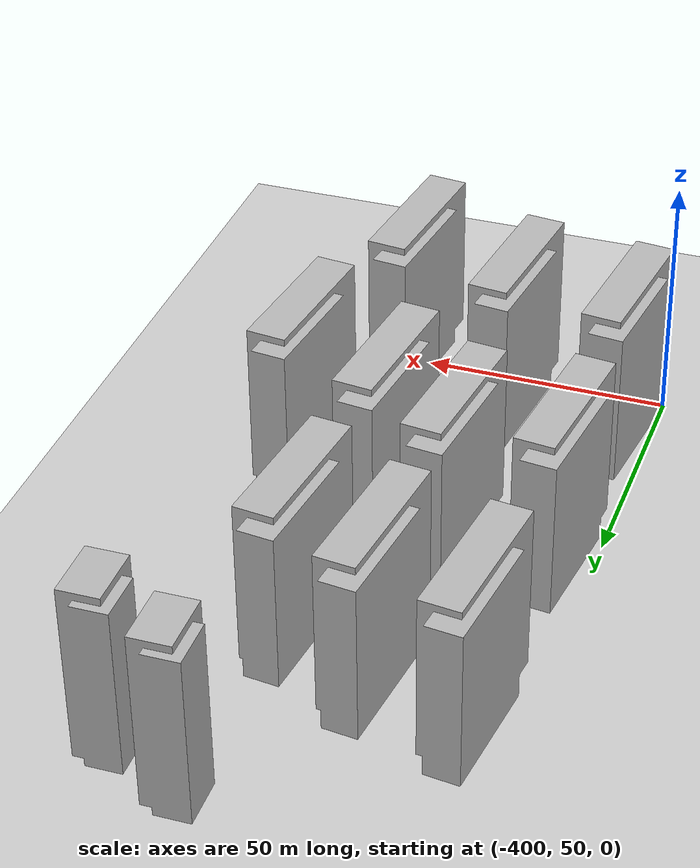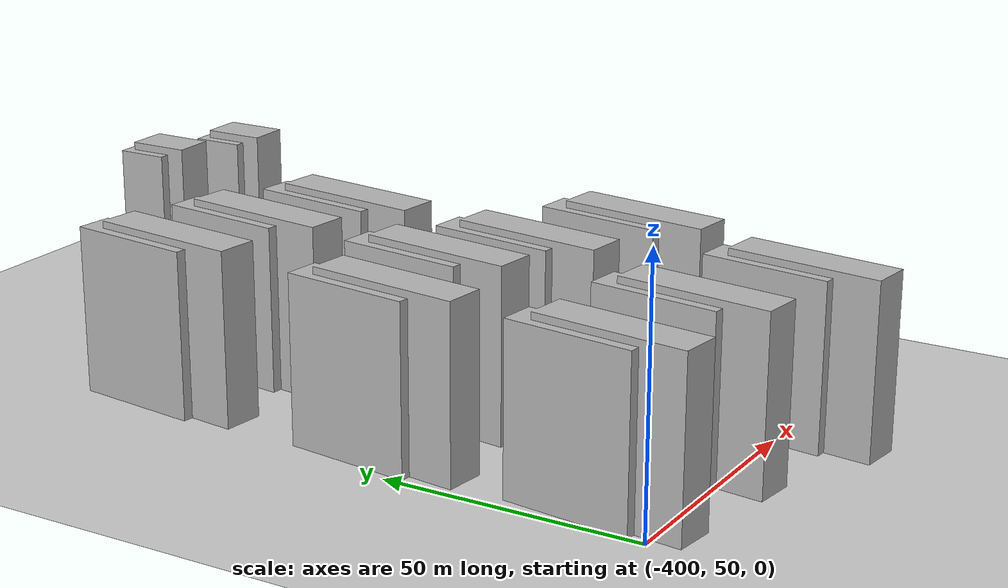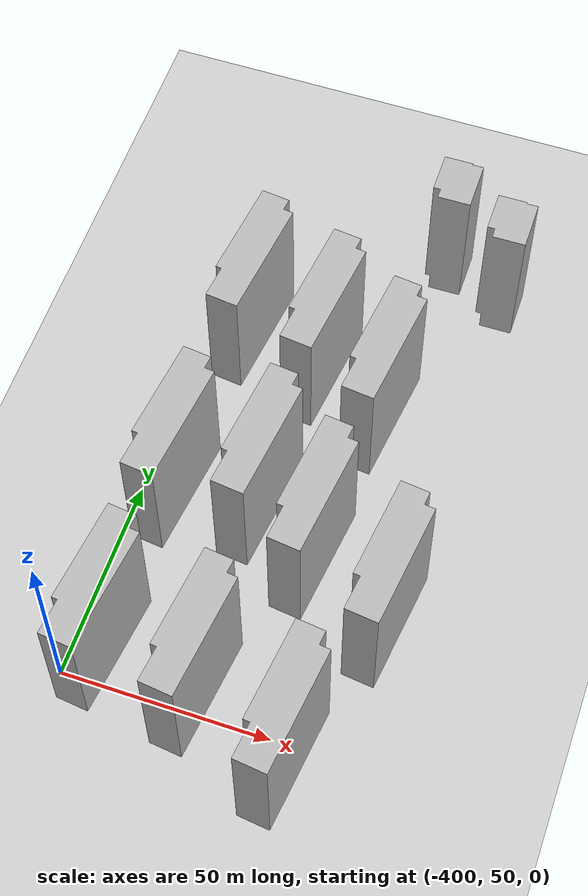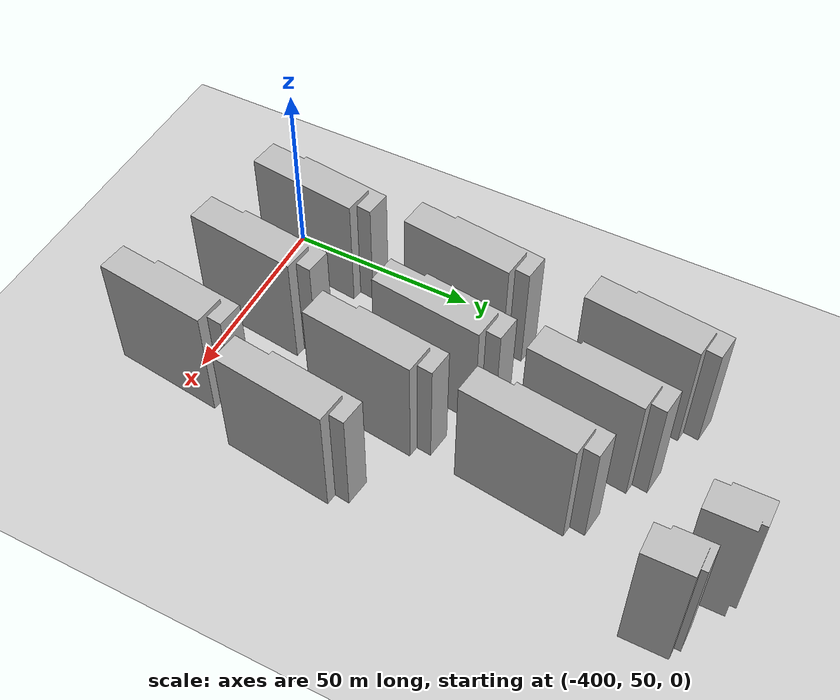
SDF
<sdf version="1.7">
 <world name="default">
  <model name="ground_plane">
   <static>1</static>
   <link name="link">
    <collision name="collision">
     <geometry><plane><normal>0 0 1</normal><size>100 100</size></plane></geometry>
     <surface><friction><ode><mu>100</mu><mu2>50</mu2></ode></friction></surface>
    </collision>
    <visual name="visual">
     <cast_shadows>0</cast_shadows>
     <geometry><plane><normal>0 0 1</normal><size>100 100</size></plane></geometry>
     <material>
      <script><uri>file://media/materials/scripts/gazebo.material</uri><name>Gazebo/Grey</name></script>
     </material>
    </visual>
   </link>
  </model>
  <model name="apartment1_1_clone_clone_2_clone_5_clone_4_clone_4_clone_clone_1_clone_4">
   <static>1</static>
   <link name="link_0">
    <inertial>
     <mass>1</mass>
     <inertia>
      <ixx>0.166667</ixx>
      <ixy>0</ixy>
      <ixz>0</ixz>
      <iyy>0.166667</iyy>
      <iyz>0</iyz>
      <izz>0.166667</izz>
     </inertia>
    </inertial>
    <pose>1e-06 -0 0 0 -0 0</pose>
    <visual name="visual">
     <geometry>
      <mesh><uri>model://apartment1/scripts/apartment1.dae</uri><scale>0.2 0.2 0.3</scale></mesh>
     </geometry>
     <material>
      <lighting>1</lighting>
      <script><uri>model://apartment1/scripts/apartment1.jpg</uri><name>__default__</name></script>
      <shader type="pixel"/>
     </material>
    </visual>
    <collision name="collision">
     <geometry>
      <mesh><uri>model://apartment1/scripts/apartment1.dae</uri><scale>0.2 0.2 0.3</scale></mesh>
     </geometry>
     <surface>
      <friction>
       <ode><mu>1</mu><mu2>1</mu2><fdir1>0 0 0</fdir1><slip1>0</slip1><slip2>0</slip2></ode>
       <torsional>
        <coefficient>1</coefficient>
        <patch_radius>0</patch_radius>
        <surface_radius>0</surface_radius>
        <use_patch_radius>1</use_patch_radius>
        <ode><slip>0</slip></ode>
       </torsional>
      </friction>
      <bounce><restitution_coefficient>0</restitution_coefficient><threshold>1e+06</threshold></bounce>
      <contact>
       <collide_without_contact>0</collide_without_contact>
       <collide_without_contact_bitmask>1</collide_without_contact_bitmask>
       <collide_bitmask>1</collide_bitmask>
       <ode>
        <soft_cfm>0</soft_cfm>
        <soft_erp>0.2</soft_erp>
        <kp>1e+13</kp>
        <kd>1</kd>
        <max_vel>0.01</max_vel>
        <min_depth>0</min_depth>
       </ode>
       <bullet>
        <split_impulse>1</split_impulse>
        <split_impulse_penetration_threshold>-0.01</split_impulse_penetration_threshold>
        <soft_cfm>0</soft_cfm>
        <soft_erp>0.2</soft_erp>
        <kp>1e+13</kp>
        <kd>1</kd>
       </bullet>
      </contact>
     </surface>
    </collision>
   </link>
   <static>0</static>
   <pose>-348.838 184.974 0 0 -0 0.008849</pose>
  </model>
  <model name="apartment1_1_clone_clone_2_clone_5_clone_4_clone_4_clone_clone_1_clone_6_clone_1">
   <static>1</static>
   <link name="link_0">
    <inertial>
     <mass>1</mass>
     <inertia>
      <ixx>0.166667</ixx>
      <ixy>0</ixy>
      <ixz>0</ixz>
      <iyy>0.166667</iyy>
      <iyz>0</iyz>
      <izz>0.166667</izz>
     </inertia>
    </inertial>
    <pose>1e-06 -0 0 0 -0 0</pose>
    <visual name="visual">
     <geometry>
      <mesh><uri>model://apartment1/scripts/apartment1.dae</uri><scale>0.2 0.2 0.3</scale></mesh>
     </geometry>
     <material>
      <lighting>1</lighting>
      <script><uri>model://apartment1/scripts/apartment1.jpg</uri><name>__default__</name></script>
      <shader type="pixel"/>
     </material>
    </visual>
    <collision name="collision">
     <geometry>
      <mesh><uri>model://apartment1/scripts/apartment1.dae</uri><scale>0.2 0.2 0.3</scale></mesh>
     </geometry>
     <surface>
      <friction>
       <ode><mu>1</mu><mu2>1</mu2><fdir1>0 0 0</fdir1><slip1>0</slip1><slip2>0</slip2></ode>
       <torsional>
        <coefficient>1</coefficient>
        <patch_radius>0</patch_radius>
        <surface_radius>0</surface_radius>
        <use_patch_radius>1</use_patch_radius>
        <ode><slip>0</slip></ode>
       </torsional>
      </friction>
      <bounce><restitution_coefficient>0</restitution_coefficient><threshold>1e+06</threshold></bounce>
      <contact>
       <collide_without_contact>0</collide_without_contact>
       <collide_without_contact_bitmask>1</collide_without_contact_bitmask>
       <collide_bitmask>1</collide_bitmask>
       <ode>
        <soft_cfm>0</soft_cfm>
        <soft_erp>0.2</soft_erp>
        <kp>1e+13</kp>
        <kd>1</kd>
        <max_vel>0.01</max_vel>
        <min_depth>0</min_depth>
       </ode>
       <bullet>
        <split_impulse>1</split_impulse>
        <split_impulse_penetration_threshold>-0.01</split_impulse_penetration_threshold>
        <soft_cfm>0</soft_cfm>
        <soft_erp>0.2</soft_erp>
        <kp>1e+13</kp>
        <kd>1</kd>
       </bullet>
      </contact>
     </surface>
    </collision>
   </link>
   <static>0</static>
   <pose>-333.373 177.762 0 0 -0 0.008849</pose>
  </model>
  <model name="apartment3">
   <static>1</static>
   <link name="link_0">
    <inertial>
     <mass>1</mass>
     <inertia>
      <ixx>0.166667</ixx>
      <ixy>0</ixy>
      <ixz>0</ixz>
      <iyy>0.166667</iyy>
      <iyz>0</iyz>
      <izz>0.166667</izz>
     </inertia>
    </inertial>
    <pose>1e-06 -0 0 0 -0 0</pose>
    <visual name="visual">
     <geometry>
      <mesh><uri>model://apartment1/scripts/apartment1.dae</uri><scale>0.2 0.5 0.28</scale></mesh>
     </geometry>
     <material>
      <lighting>1</lighting>
      <script><uri>model://apartment1/scripts/apartment1.jpg</uri><name>__default__</name></script>
      <shader type="pixel"/>
     </material>
    </visual>
    <collision name="collision">
     <geometry>
      <mesh><uri>model://apartment1/scripts/apartment1.dae</uri><scale>0.2 0.5 0.28</scale></mesh>
     </geometry>
     <surface>
      <friction>
       <ode><mu>1</mu><mu2>1</mu2><fdir1>0 0 0</fdir1><slip1>0</slip1><slip2>0</slip2></ode>
       <torsional>
        <coefficient>1</coefficient>
        <patch_radius>0</patch_radius>
        <surface_radius>0</surface_radius>
        <use_patch_radius>1</use_patch_radius>
        <ode><slip>0</slip></ode>
       </torsional>
      </friction>
      <bounce><restitution_coefficient>0</restitution_coefficient><threshold>1e+06</threshold></bounce>
      <contact>
       <collide_without_contact>0</collide_without_contact>
       <collide_without_contact_bitmask>1</collide_without_contact_bitmask>
       <collide_bitmask>1</collide_bitmask>
       <ode>
        <soft_cfm>0</soft_cfm>
        <soft_erp>0.2</soft_erp>
        <kp>1e+13</kp>
        <kd>1</kd>
        <max_vel>0.01</max_vel>
        <min_depth>0</min_depth>
       </ode>
       <bullet>
        <split_impulse>1</split_impulse>
        <split_impulse_penetration_threshold>-0.01</split_impulse_penetration_threshold>
        <soft_cfm>0</soft_cfm>
        <soft_erp>0.2</soft_erp>
        <kp>1e+13</kp>
        <kd>1</kd>
       </bullet>
      </contact>
     </surface>
    </collision>
   </link>
   <static>0</static>
   <pose>-390.063 150.668 0 0 0 -0.11616</pose>
  </model>
  <model name="apartment3_clone">
   <static>1</static>
   <link name="link_0">
    <inertial>
     <mass>1</mass>
     <inertia>
      <ixx>0.166667</ixx>
      <ixy>0</ixy>
      <ixz>0</ixz>
      <iyy>0.166667</iyy>
      <iyz>0</iyz>
      <izz>0.166667</izz>
     </inertia>
    </inertial>
    <pose>1e-06 -0 0 0 -0 0</pose>
    <visual name="visual">
     <geometry>
      <mesh><uri>model://apartment1/scripts/apartment1.dae</uri><scale>0.2 0.5 0.28</scale></mesh>
     </geometry>
     <material>
      <lighting>1</lighting>
      <script><uri>model://apartment1/scripts/apartment1.jpg</uri><name>__default__</name></script>
      <shader type="pixel"/>
     </material>
    </visual>
    <collision name="collision">
     <geometry>
      <mesh><uri>model://apartment1/scripts/apartment1.dae</uri><scale>0.2 0.5 0.28</scale></mesh>
     </geometry>
     <surface>
      <friction>
       <ode><mu>1</mu><mu2>1</mu2><fdir1>0 0 0</fdir1><slip1>0</slip1><slip2>0</slip2></ode>
       <torsional>
        <coefficient>1</coefficient>
        <patch_radius>0</patch_radius>
        <surface_radius>0</surface_radius>
        <use_patch_radius>1</use_patch_radius>
        <ode><slip>0</slip></ode>
       </torsional>
      </friction>
      <bounce><restitution_coefficient>0</restitution_coefficient><threshold>1e+06</threshold></bounce>
      <contact>
       <collide_without_contact>0</collide_without_contact>
       <collide_without_contact_bitmask>1</collide_without_contact_bitmask>
       <collide_bitmask>1</collide_bitmask>
       <ode>
        <soft_cfm>0</soft_cfm>
        <soft_erp>0.2</soft_erp>
        <kp>1e+13</kp>
        <kd>1</kd>
        <max_vel>0.01</max_vel>
        <min_depth>0</min_depth>
       </ode>
       <bullet>
        <split_impulse>1</split_impulse>
        <split_impulse_penetration_threshold>-0.01</split_impulse_penetration_threshold>
        <soft_cfm>0</soft_cfm>
        <soft_erp>0.2</soft_erp>
        <kp>1e+13</kp>
        <kd>1</kd>
       </bullet>
      </contact>
     </surface>
    </collision>
   </link>
   <static>0</static>
   <pose>-392.106 102.298 0 0 0 -0.11616</pose>
  </model>
  <model name="apartment3_clone_0">
   <static>1</static>
   <link name="link_0">
    <inertial>
     <mass>1</mass>
     <inertia>
      <ixx>0.166667</ixx>
      <ixy>0</ixy>
      <ixz>0</ixz>
      <iyy>0.166667</iyy>
      <iyz>0</iyz>
      <izz>0.166667</izz>
     </inertia>
    </inertial>
    <pose>1e-06 -0 0 0 -0 0</pose>
    <visual name="visual">
     <geometry>
      <mesh><uri>model://apartment1/scripts/apartment1.dae</uri><scale>0.2 0.5 0.28</scale></mesh>
     </geometry>
     <material>
      <lighting>1</lighting>
      <script><uri>model://apartment1/scripts/apartment1.jpg</uri><name>__default__</name></script>
      <shader type="pixel"/>
     </material>
    </visual>
    <collision name="collision">
     <geometry>
      <mesh><uri>model://apartment1/scripts/apartment1.dae</uri><scale>0.2 0.5 0.28</scale></mesh>
     </geometry>
     <surface>
      <friction>
       <ode><mu>1</mu><mu2>1</mu2><fdir1>0 0 0</fdir1><slip1>0</slip1><slip2>0</slip2></ode>
       <torsional>
        <coefficient>1</coefficient>
        <patch_radius>0</patch_radius>
        <surface_radius>0</surface_radius>
        <use_patch_radius>1</use_patch_radius>
        <ode><slip>0</slip></ode>
       </torsional>
      </friction>
      <bounce><restitution_coefficient>0</restitution_coefficient><threshold>1e+06</threshold></bounce>
      <contact>
       <collide_without_contact>0</collide_without_contact>
       <collide_without_contact_bitmask>1</collide_without_contact_bitmask>
       <collide_bitmask>1</collide_bitmask>
       <ode>
        <soft_cfm>0</soft_cfm>
        <soft_erp>0.2</soft_erp>
        <kp>1e+13</kp>
        <kd>1</kd>
        <max_vel>0.01</max_vel>
        <min_depth>0</min_depth>
       </ode>
       <bullet>
        <split_impulse>1</split_impulse>
        <split_impulse_penetration_threshold>-0.01</split_impulse_penetration_threshold>
        <soft_cfm>0</soft_cfm>
        <soft_erp>0.2</soft_erp>
        <kp>1e+13</kp>
        <kd>1</kd>
       </bullet>
      </contact>
     </surface>
    </collision>
   </link>
   <static>0</static>
   <pose>-393.007 58.7016 0 0 0 -0.11616</pose>
  </model>
  <model name="apartment3_clone_1">
   <static>1</static>
   <link name="link_0">
    <inertial>
     <mass>1</mass>
     <inertia>
      <ixx>0.166667</ixx>
      <ixy>0</ixy>
      <ixz>0</ixz>
      <iyy>0.166667</iyy>
      <iyz>0</iyz>
      <izz>0.166667</izz>
     </inertia>
    </inertial>
    <pose>1e-06 -0 0 0 -0 0</pose>
    <visual name="visual">
     <geometry>
      <mesh><uri>model://apartment1/scripts/apartment1.dae</uri><scale>0.2 0.5 0.28</scale></mesh>
     </geometry>
     <material>
      <lighting>1</lighting>
      <script><uri>model://apartment1/scripts/apartment1.jpg</uri><name>__default__</name></script>
      <shader type="pixel"/>
     </material>
    </visual>
    <collision name="collision">
     <geometry>
      <mesh><uri>model://apartment1/scripts/apartment1.dae</uri><scale>0.2 0.5 0.28</scale></mesh>
     </geometry>
     <surface>
      <friction>
       <ode><mu>1</mu><mu2>1</mu2><fdir1>0 0 0</fdir1><slip1>0</slip1><slip2>0</slip2></ode>
       <torsional>
        <coefficient>1</coefficient>
        <patch_radius>0</patch_radius>
        <surface_radius>0</surface_radius>
        <use_patch_radius>1</use_patch_radius>
        <ode><slip>0</slip></ode>
       </torsional>
      </friction>
      <bounce><restitution_coefficient>0</restitution_coefficient><threshold>1e+06</threshold></bounce>
      <contact>
       <collide_without_contact>0</collide_without_contact>
       <collide_without_contact_bitmask>1</collide_without_contact_bitmask>
       <collide_bitmask>1</collide_bitmask>
       <ode>
        <soft_cfm>0</soft_cfm>
        <soft_erp>0.2</soft_erp>
        <kp>1e+13</kp>
        <kd>1</kd>
        <max_vel>0.01</max_vel>
        <min_depth>0</min_depth>
       </ode>
       <bullet>
        <split_impulse>1</split_impulse>
        <split_impulse_penetration_threshold>-0.01</split_impulse_penetration_threshold>
        <soft_cfm>0</soft_cfm>
        <soft_erp>0.2</soft_erp>
        <kp>1e+13</kp>
        <kd>1</kd>
       </bullet>
      </contact>
     </surface>
    </collision>
   </link>
   <static>0</static>
   <pose>-369.486 55.3366 0 0 0 -0.11616</pose>
  </model>
  <model name="apartment3_clone_2">
   <static>1</static>
   <link name="link_0">
    <inertial>
     <mass>1</mass>
     <inertia>
      <ixx>0.166667</ixx>
      <ixy>0</ixy>
      <ixz>0</ixz>
      <iyy>0.166667</iyy>
      <iyz>0</iyz>
      <izz>0.166667</izz>
     </inertia>
    </inertial>
    <pose>1e-06 -0 0 0 -0 0</pose>
    <visual name="visual">
     <geometry>
      <mesh><uri>model://apartment1/scripts/apartment1.dae</uri><scale>0.2 0.5 0.28</scale></mesh>
     </geometry>
     <material>
      <lighting>1</lighting>
      <script><uri>model://apartment1/scripts/apartment1.jpg</uri><name>__default__</name></script>
      <shader type="pixel"/>
     </material>
    </visual>
    <collision name="collision">
     <geometry>
      <mesh><uri>model://apartment1/scripts/apartment1.dae</uri><scale>0.2 0.5 0.28</scale></mesh>
     </geometry>
     <surface>
      <friction>
       <ode><mu>1</mu><mu2>1</mu2><fdir1>0 0 0</fdir1><slip1>0</slip1><slip2>0</slip2></ode>
       <torsional>
        <coefficient>1</coefficient>
        <patch_radius>0</patch_radius>
        <surface_radius>0</surface_radius>
        <use_patch_radius>1</use_patch_radius>
        <ode><slip>0</slip></ode>
       </torsional>
      </friction>
      <bounce><restitution_coefficient>0</restitution_coefficient><threshold>1e+06</threshold></bounce>
      <contact>
       <collide_without_contact>0</collide_without_contact>
       <collide_without_contact_bitmask>1</collide_without_contact_bitmask>
       <collide_bitmask>1</collide_bitmask>
       <ode>
        <soft_cfm>0</soft_cfm>
        <soft_erp>0.2</soft_erp>
        <kp>1e+13</kp>
        <kd>1</kd>
        <max_vel>0.01</max_vel>
        <min_depth>0</min_depth>
       </ode>
       <bullet>
        <split_impulse>1</split_impulse>
        <split_impulse_penetration_threshold>-0.01</split_impulse_penetration_threshold>
        <soft_cfm>0</soft_cfm>
        <soft_erp>0.2</soft_erp>
        <kp>1e+13</kp>
        <kd>1</kd>
       </bullet>
      </contact>
     </surface>
    </collision>
   </link>
   <static>0</static>
   <pose>-345.643 45.8468 0 0 0 -0.11616</pose>
  </model>
  <model name="apartment3_clone_3">
   <static>1</static>
   <link name="link_0">
    <inertial>
     <mass>1</mass>
     <inertia>
      <ixx>0.166667</ixx>
      <ixy>0</ixy>
      <ixz>0</ixz>
      <iyy>0.166667</iyy>
      <iyz>0</iyz>
      <izz>0.166667</izz>
     </inertia>
    </inertial>
    <pose>1e-06 -0 0 0 -0 0</pose>
    <visual name="visual">
     <geometry>
      <mesh><uri>model://apartment1/scripts/apartment1.dae</uri><scale>0.2 0.5 0.28</scale></mesh>
     </geometry>
     <material>
      <lighting>1</lighting>
      <script><uri>model://apartment1/scripts/apartment1.jpg</uri><name>__default__</name></script>
      <shader type="pixel"/>
     </material>
    </visual>
    <collision name="collision">
     <geometry>
      <mesh><uri>model://apartment1/scripts/apartment1.dae</uri><scale>0.2 0.5 0.28</scale></mesh>
     </geometry>
     <surface>
      <friction>
       <ode><mu>1</mu><mu2>1</mu2><fdir1>0 0 0</fdir1><slip1>0</slip1><slip2>0</slip2></ode>
       <torsional>
        <coefficient>1</coefficient>
        <patch_radius>0</patch_radius>
        <surface_radius>0</surface_radius>
        <use_patch_radius>1</use_patch_radius>
        <ode><slip>0</slip></ode>
       </torsional>
      </friction>
      <bounce><restitution_coefficient>0</restitution_coefficient><threshold>1e+06</threshold></bounce>
      <contact>
       <collide_without_contact>0</collide_without_contact>
       <collide_without_contact_bitmask>1</collide_without_contact_bitmask>
       <collide_bitmask>1</collide_bitmask>
       <ode>
        <soft_cfm>0</soft_cfm>
        <soft_erp>0.2</soft_erp>
        <kp>1e+13</kp>
        <kd>1</kd>
        <max_vel>0.01</max_vel>
        <min_depth>0</min_depth>
       </ode>
       <bullet>
        <split_impulse>1</split_impulse>
        <split_impulse_penetration_threshold>-0.01</split_impulse_penetration_threshold>
        <soft_cfm>0</soft_cfm>
        <soft_erp>0.2</soft_erp>
        <kp>1e+13</kp>
        <kd>1</kd>
       </bullet>
      </contact>
     </surface>
    </collision>
   </link>
   <static>0</static>
   <pose>-334.736 84.5184 0 0 0 -0.11616</pose>
  </model>
  <model name="apartment3_clone_4">
   <static>1</static>
   <link name="link_0">
    <inertial>
     <mass>1</mass>
     <inertia>
      <ixx>0.166667</ixx>
      <ixy>0</ixy>
      <ixz>0</ixz>
      <iyy>0.166667</iyy>
      <iyz>0</iyz>
      <izz>0.166667</izz>
     </inertia>
    </inertial>
    <pose>1e-06 -0 0 0 -0 0</pose>
    <visual name="visual">
     <geometry>
      <mesh><uri>model://apartment1/scripts/apartment1.dae</uri><scale>0.2 0.5 0.28</scale></mesh>
     </geometry>
     <material>
      <lighting>1</lighting>
      <script><uri>model://apartment1/scripts/apartment1.jpg</uri><name>__default__</name></script>
      <shader type="pixel"/>
     </material>
    </visual>
    <collision name="collision">
     <geometry>
      <mesh><uri>model://apartment1/scripts/apartment1.dae</uri><scale>0.2 0.5 0.28</scale></mesh>
     </geometry>
     <surface>
      <friction>
       <ode><mu>1</mu><mu2>1</mu2><fdir1>0 0 0</fdir1><slip1>0</slip1><slip2>0</slip2></ode>
       <torsional>
        <coefficient>1</coefficient>
        <patch_radius>0</patch_radius>
        <surface_radius>0</surface_radius>
        <use_patch_radius>1</use_patch_radius>
        <ode><slip>0</slip></ode>
       </torsional>
      </friction>
      <bounce><restitution_coefficient>0</restitution_coefficient><threshold>1e+06</threshold></bounce>
      <contact>
       <collide_without_contact>0</collide_without_contact>
       <collide_without_contact_bitmask>1</collide_without_contact_bitmask>
       <collide_bitmask>1</collide_bitmask>
       <ode>
        <soft_cfm>0</soft_cfm>
        <soft_erp>0.2</soft_erp>
        <kp>1e+13</kp>
        <kd>1</kd>
        <max_vel>0.01</max_vel>
        <min_depth>0</min_depth>
       </ode>
       <bullet>
        <split_impulse>1</split_impulse>
        <split_impulse_penetration_threshold>-0.01</split_impulse_penetration_threshold>
        <soft_cfm>0</soft_cfm>
        <soft_erp>0.2</soft_erp>
        <kp>1e+13</kp>
        <kd>1</kd>
       </bullet>
      </contact>
     </surface>
    </collision>
   </link>
   <static>0</static>
   <pose>-355.654 95.2153 0 0 0 -0.11616</pose>
  </model>
  <model name="apartment3_clone_5">
   <static>1</static>
   <link name="link_0">
    <inertial>
     <mass>1</mass>
     <inertia>
      <ixx>0.166667</ixx>
      <ixy>0</ixy>
      <ixz>0</ixz>
      <iyy>0.166667</iyy>
      <iyz>0</iyz>
      <izz>0.166667</izz>
     </inertia>
    </inertial>
    <pose>1e-06 -0 0 0 -0 0</pose>
    <visual name="visual">
     <geometry>
      <mesh><uri>model://apartment1/scripts/apartment1.dae</uri><scale>0.2 0.5 0.28</scale></mesh>
     </geometry>
     <material>
      <lighting>1</lighting>
      <script><uri>model://apartment1/scripts/apartment1.jpg</uri><name>__default__</name></script>
      <shader type="pixel"/>
     </material>
    </visual>
    <collision name="collision">
     <geometry>
      <mesh><uri>model://apartment1/scripts/apartment1.dae</uri><scale>0.2 0.5 0.28</scale></mesh>
     </geometry>
     <surface>
      <friction>
       <ode><mu>1</mu><mu2>1</mu2><fdir1>0 0 0</fdir1><slip1>0</slip1><slip2>0</slip2></ode>
       <torsional>
        <coefficient>1</coefficient>
        <patch_radius>0</patch_radius>
        <surface_radius>0</surface_radius>
        <use_patch_radius>1</use_patch_radius>
        <ode><slip>0</slip></ode>
       </torsional>
      </friction>
      <bounce><restitution_coefficient>0</restitution_coefficient><threshold>1e+06</threshold></bounce>
      <contact>
       <collide_without_contact>0</collide_without_contact>
       <collide_without_contact_bitmask>1</collide_without_contact_bitmask>
       <collide_bitmask>1</collide_bitmask>
       <ode>
        <soft_cfm>0</soft_cfm>
        <soft_erp>0.2</soft_erp>
        <kp>1e+13</kp>
        <kd>1</kd>
        <max_vel>0.01</max_vel>
        <min_depth>0</min_depth>
       </ode>
       <bullet>
        <split_impulse>1</split_impulse>
        <split_impulse_penetration_threshold>-0.01</split_impulse_penetration_threshold>
        <soft_cfm>0</soft_cfm>
        <soft_erp>0.2</soft_erp>
        <kp>1e+13</kp>
        <kd>1</kd>
       </bullet>
      </contact>
     </surface>
    </collision>
   </link>
   <static>0</static>
   <pose>-371.844 104.434 0 0 0 -0.11616</pose>
  </model>
  <model name="apartment3_clone_6">
   <static>1</static>
   <link name="link_0">
    <inertial>
     <mass>1</mass>
     <inertia>
      <ixx>0.166667</ixx>
      <ixy>0</ixy>
      <ixz>0</ixz>
      <iyy>0.166667</iyy>
      <iyz>0</iyz>
      <izz>0.166667</izz>
     </inertia>
    </inertial>
    <pose>1e-06 -0 0 0 -0 0</pose>
    <visual name="visual">
     <geometry>
      <mesh><uri>model://apartment1/scripts/apartment1.dae</uri><scale>0.2 0.5 0.28</scale></mesh>
     </geometry>
     <material>
      <lighting>1</lighting>
      <script><uri>model://apartment1/scripts/apartment1.jpg</uri><name>__default__</name></script>
      <shader type="pixel"/>
     </material>
    </visual>
    <collision name="collision">
     <geometry>
      <mesh><uri>model://apartment1/scripts/apartment1.dae</uri><scale>0.2 0.5 0.28</scale></mesh>
     </geometry>
     <surface>
      <friction>
       <ode><mu>1</mu><mu2>1</mu2><fdir1>0 0 0</fdir1><slip1>0</slip1><slip2>0</slip2></ode>
       <torsional>
        <coefficient>1</coefficient>
        <patch_radius>0</patch_radius>
        <surface_radius>0</surface_radius>
        <use_patch_radius>1</use_patch_radius>
        <ode><slip>0</slip></ode>
       </torsional>
      </friction>
      <bounce><restitution_coefficient>0</restitution_coefficient><threshold>1e+06</threshold></bounce>
      <contact>
       <collide_without_contact>0</collide_without_contact>
       <collide_without_contact_bitmask>1</collide_without_contact_bitmask>
       <collide_bitmask>1</collide_bitmask>
       <ode>
        <soft_cfm>0</soft_cfm>
        <soft_erp>0.2</soft_erp>
        <kp>1e+13</kp>
        <kd>1</kd>
        <max_vel>0.01</max_vel>
        <min_depth>0</min_depth>
       </ode>
       <bullet>
        <split_impulse>1</split_impulse>
        <split_impulse_penetration_threshold>-0.01</split_impulse_penetration_threshold>
        <soft_cfm>0</soft_cfm>
        <soft_erp>0.2</soft_erp>
        <kp>1e+13</kp>
        <kd>1</kd>
       </bullet>
      </contact>
     </surface>
    </collision>
   </link>
   <static>0</static>
   <pose>-370.109 145.23 0 0 0 -0.11616</pose>
  </model>
  <model name="apartment3_clone_7">
   <static>1</static>
   <link name="link_0">
    <inertial>
     <mass>1</mass>
     <inertia>
      <ixx>0.166667</ixx>
      <ixy>0</ixy>
      <ixz>0</ixz>
      <iyy>0.166667</iyy>
      <iyz>0</iyz>
      <izz>0.166667</izz>
     </inertia>
    </inertial>
    <pose>1e-06 -0 0 0 -0 0</pose>
    <visual name="visual">
     <geometry>
      <mesh><uri>model://apartment1/scripts/apartment1.dae</uri><scale>0.2 0.5 0.28</scale></mesh>
     </geometry>
     <material>
      <lighting>1</lighting>
      <script><uri>model://apartment1/scripts/apartment1.jpg</uri><name>__default__</name></script>
      <shader type="pixel"/>
     </material>
    </visual>
    <collision name="collision">
     <geometry>
      <mesh><uri>model://apartment1/scripts/apartment1.dae</uri><scale>0.2 0.5 0.28</scale></mesh>
     </geometry>
     <surface>
      <friction>
       <ode><mu>1</mu><mu2>1</mu2><fdir1>0 0 0</fdir1><slip1>0</slip1><slip2>0</slip2></ode>
       <torsional>
        <coefficient>1</coefficient>
        <patch_radius>0</patch_radius>
        <surface_radius>0</surface_radius>
        <use_patch_radius>1</use_patch_radius>
        <ode><slip>0</slip></ode>
       </torsional>
      </friction>
      <bounce><restitution_coefficient>0</restitution_coefficient><threshold>1e+06</threshold></bounce>
      <contact>
       <collide_without_contact>0</collide_without_contact>
       <collide_without_contact_bitmask>1</collide_without_contact_bitmask>
       <collide_bitmask>1</collide_bitmask>
       <ode>
        <soft_cfm>0</soft_cfm>
        <soft_erp>0.2</soft_erp>
        <kp>1e+13</kp>
        <kd>1</kd>
        <max_vel>0.01</max_vel>
        <min_depth>0</min_depth>
       </ode>
       <bullet>
        <split_impulse>1</split_impulse>
        <split_impulse_penetration_threshold>-0.01</split_impulse_penetration_threshold>
        <soft_cfm>0</soft_cfm>
        <soft_erp>0.2</soft_erp>
        <kp>1e+13</kp>
        <kd>1</kd>
       </bullet>
      </contact>
     </surface>
    </collision>
   </link>
   <static>0</static>
   <pose>-352.528 136.797 0 0 0 -0.11616</pose>
  </model>
 </world>
</sdf>
